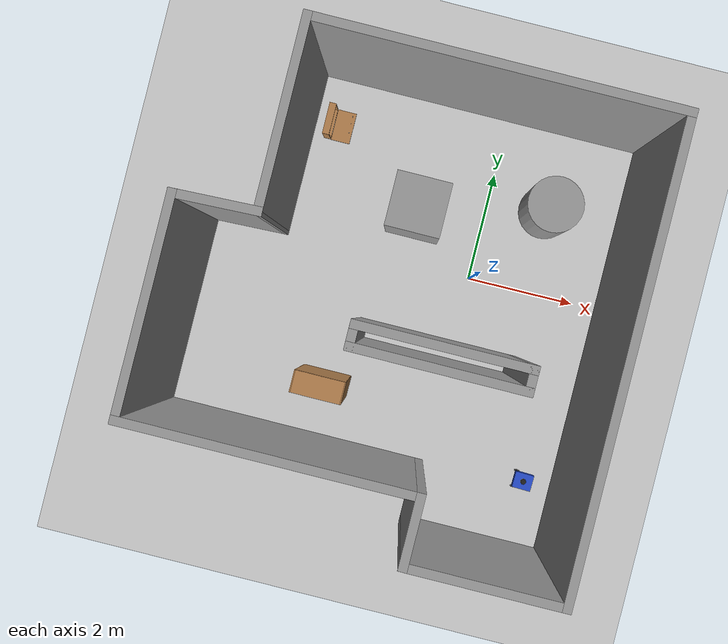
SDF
<sdf version="1.6">
 <world name="default">
  <light name="sun" type="directional">
   <pose>0 0 10 0 -0 0</pose>
   <diffuse>0.8 0.8 0.8 1</diffuse>
   <specular>0.2 0.2 0.2 1</specular>
   <attenuation>
    <range>1000</range>
    <constant>0.9</constant>
    <linear>0.01</linear>
    <quadratic>0.001</quadratic>
   </attenuation>
   <direction>-0.5 0.1 -0.9</direction>
  </light>
  <model name="ground_plane">
   <static>1</static>
   <link name="link">
    <collision name="collision">
     <geometry><plane><normal>0 0 1</normal><size>100 100</size></plane></geometry>
     <surface><friction><ode><mu>100</mu><mu2>50</mu2></ode></friction></surface>
    </collision>
    <visual name="visual">
     <cast_shadows>0</cast_shadows>
     <geometry><plane><normal>0 0 1</normal><size>100 100</size></plane></geometry>
     <material>
      <script><uri>file://media/materials/scripts/gazebo.material</uri><name>Gazebo/Grey</name></script>
     </material>
    </visual>
   </link>
  </model>
  <gravity>0 0 -9.8</gravity>
  <magnetic_field>6e-06 2.3e-05 -4.2e-05</magnetic_field>
  <atmosphere type="adiabatic"/>
  <physics name="default_physics" default="0" type="ode">
   <max_step_size>0.001</max_step_size>
   <real_time_factor>1</real_time_factor>
   <real_time_update_rate>1000</real_time_update_rate>
  </physics>
  <scene><ambient>0.4 0.4 0.4 1</ambient><background>0.7 0.7 0.7 1</background><shadows>1</shadows></scene>
  <spherical_coordinates>
   <surface_model>EARTH_WGS84</surface_model>
   <latitude_deg>0</latitude_deg>
   <longitude_deg>0</longitude_deg>
   <elevation>0</elevation>
   <heading_deg>0</heading_deg>
  </spherical_coordinates>
  <model name="mrobot">
   <link name="base_footprint">
    <inertial>
     <pose>0 0 0.275199 0 -0 0</pose>
     <mass>30.1</mass>
     <inertia><ixx>17.1916</ixx><ixy>0</ixy><ixz>0</ixz><iyy>17.1916</iyy><iyz>0</iyz><izz>33.76</izz></inertia>
    </inertial>
    <collision name="base_footprint_fixed_joint_lump__base_link_collision">
     <pose>0 0 0.275 0 -0 0</pose>
     <geometry><box><size>0.35 0.3 0.1</size></box></geometry>
    </collision>
    <collision name="base_footprint_fixed_joint_lump__laser_link_collision_1">
     <pose>0 0 0.335 0 -0 0</pose>
     <geometry><cylinder><length>0.06</length><radius>0.05</radius></cylinder></geometry>
    </collision>
    <visual name="base_footprint_visual">
     <geometry><box><size>0.001 0.001 0.001</size></box></geometry>
     <material><script><uri>__default__</uri><name>__default__</name></script></material>
    </visual>
    <visual name="base_footprint_fixed_joint_lump__base_link_visual_1">
     <pose>0 0 0.275 0 -0 0</pose>
     <geometry><box><size>0.35 0.3 0.1</size></box></geometry>
     <material>
      <script><name>Gazebo/Blue</name><uri>file://media/materials/scripts/gazebo.material</uri></script>
     </material>
    </visual>
    <visual name="base_footprint_fixed_joint_lump__laser_link_visual_2">
     <pose>0 0 0.335 0 -0 0</pose>
     <geometry><cylinder><length>0.05</length><radius>0.05</radius></cylinder></geometry>
     <material>
      <script><name>Gazebo/Black</name><uri>file://media/materials/scripts/gazebo.material</uri></script>
     </material>
    </visual>
    <sensor name="rplidar" type="ray">
     <visualize>0</visualize>
     <update_rate>5.5</update_rate>
     <ray>
      <scan>
       <horizontal>
        <samples>360</samples>
        <resolution>1</resolution>
        <min_angle>-3</min_angle>
        <max_angle>3</max_angle>
       </horizontal>
       <vertical><samples>1</samples><min_angle>0</min_angle><max_angle>0</max_angle></vertical>
      </scan>
      <range><min>0.1</min><max>6</max><resolution>0.01</resolution></range>
      <noise><type>gaussian</type><mean>0</mean><stddev>0.01</stddev></noise>
     </ray>
     <plugin name="gazebo_rplidar" filename="libgazebo_ros_laser.so">
      <topicName>/scan</topicName>
      <frameName>laser_link</frameName>
      <robotNamespace>/</robotNamespace>
     </plugin>
     <pose>0 0 0.335 0 -0 0</pose>
    </sensor>
   </link>
   <link name="front_caster_link">
    <pose>0.13 0 0.225 0 -0 0</pose>
    <inertial>
     <mass>0.2</mass>
     <inertia><ixx>0.0002</ixx><ixy>0</ixy><ixz>0</ixz><iyy>0.0002</iyy><iyz>0</iyz><izz>0.0002</izz></inertia>
    </inertial>
    <collision name="front_caster_link_collision">
     <geometry><sphere><radius>0.05</radius></sphere></geometry>
    </collision>
    <visual name="front_caster_link_visual">
     <geometry><sphere><radius>0.05</radius></sphere></geometry>
     <material>
      <script><name>Gazebo/Black</name><uri>file://media/materials/scripts/gazebo.material</uri></script>
     </material>
    </visual>
   </link>
   <joint name="front_caster_joint" type="revolute">
    <child>front_caster_link</child>
    <parent>base_footprint</parent>
    <axis>
     <xyz>0 1 0</xyz>
     <limit><lower>-1e+16</lower><upper>1e+16</upper></limit>
     <dynamics><spring_reference>0</spring_reference><spring_stiffness>0</spring_stiffness></dynamics>
     <use_parent_model_frame>1</use_parent_model_frame>
    </axis>
   </joint>
   <link name="left_wheel_link">
    <pose>-0.15 -0.15 0.225 0 -0 0</pose>
    <inertial>
     <mass>5</mass>
     <inertia>
      <ixx>0.00338542</ixx>
      <ixy>0</ixy>
      <ixz>0</ixz>
      <iyy>0.00338542</iyy>
      <iyz>0</iyz>
      <izz>0.00625</izz>
     </inertia>
    </inertial>
    <collision name="left_wheel_link_collision">
     <pose>0 0 0 1.5708 -0 0</pose>
     <geometry><cylinder><length>0.025</length><radius>0.05</radius></cylinder></geometry>
    </collision>
    <visual name="left_wheel_link_visual">
     <pose>0 0 0 1.5708 -0 0</pose>
     <geometry><cylinder><length>0.025</length><radius>0.05</radius></cylinder></geometry>
     <material>
      <script><name>Gazebo/Black</name><uri>file://media/materials/scripts/gazebo.material</uri></script>
     </material>
    </visual>
    <visual name="left_wheel_link_fixed_joint_lump__cylinder_link_visual_1">
     <pose>0 0.162 0 1.5708 -0 0</pose>
     <geometry><cylinder><length>0.3</length><radius>0.004</radius></cylinder></geometry>
     <material>
      <script><name>Gazebo/Yellow</name><uri>file://media/materials/scripts/gazebo.material</uri></script>
     </material>
    </visual>
   </link>
   <joint name="left_wheel_joint" type="revolute">
    <child>left_wheel_link</child>
    <parent>base_footprint</parent>
    <axis>
     <xyz>0 1 0</xyz>
     <limit><lower>-1e+16</lower><upper>1e+16</upper></limit>
     <dynamics><spring_reference>0</spring_reference><spring_stiffness>0</spring_stiffness></dynamics>
     <use_parent_model_frame>1</use_parent_model_frame>
    </axis>
   </joint>
   <link name="right_wheel_link">
    <pose>-0.15 0.15 0.225 0 -0 0</pose>
    <inertial>
     <mass>5</mass>
     <inertia>
      <ixx>0.00338542</ixx>
      <ixy>0</ixy>
      <ixz>0</ixz>
      <iyy>0.00338542</iyy>
      <iyz>0</iyz>
      <izz>0.00625</izz>
     </inertia>
    </inertial>
    <collision name="right_wheel_link_collision">
     <pose>0 0 0 1.5708 -0 0</pose>
     <geometry><cylinder><length>0.025</length><radius>0.05</radius></cylinder></geometry>
    </collision>
    <visual name="right_wheel_link_visual">
     <pose>0 0 0 1.5708 -0 0</pose>
     <geometry><cylinder><length>0.025</length><radius>0.05</radius></cylinder></geometry>
     <material>
      <script><name>Gazebo/Black</name><uri>file://media/materials/scripts/gazebo.material</uri></script>
     </material>
    </visual>
   </link>
   <joint name="right_wheel_joint" type="revolute">
    <child>right_wheel_link</child>
    <parent>base_footprint</parent>
    <axis>
     <xyz>0 1 0</xyz>
     <limit><lower>-1e+16</lower><upper>1e+16</upper></limit>
     <dynamics><spring_reference>0</spring_reference><spring_stiffness>0</spring_stiffness></dynamics>
     <use_parent_model_frame>1</use_parent_model_frame>
    </axis>
   </joint>
   <static>0</static>
   <plugin name="differential_drive_controller" filename="libgazebo_ros_diff_drive.so">
    <rosDebugLevel>Debug</rosDebugLevel>
    <publishWheelTF>true</publishWheelTF>
    <robotNamespace>/</robotNamespace>
    <publishTf>1</publishTf>
    <publishWheelJointState>true</publishWheelJointState>
    <alwaysOn>true</alwaysOn>
    <updateRate>100.0</updateRate>
    <legacyMode>true</legacyMode>
    <leftJoint>left_wheel_joint</leftJoint>
    <rightJoint>right_wheel_joint</rightJoint>
    <wheelSeparation>0.3</wheelSeparation>
    <wheelDiameter>0.1</wheelDiameter>
    <broadcastTF>1</broadcastTF>
    <wheelTorque>30</wheelTorque>
    <wheelAcceleration>1.8</wheelAcceleration>
    <commandTopic>cmd_vel</commandTopic>
    <odometryFrame>odom</odometryFrame>
    <odometryTopic>odom</odometryTopic>
    <robotBaseFrame>base_footprint</robotBaseFrame>
   </plugin>
   <pose>1.90566 -3.45031 -0.17503 0 0.000211 -0.03056</pose>
  </model>
  <model name="bookshelf">
   <static>1</static>
   <link name="link">
    <inertial><mass>1</mass></inertial>
    <collision name="back">
     <pose>0 0.005 0.6 0 -0 0</pose>
     <geometry><box><size>0.9 0.01 1.2</size></box></geometry>
    </collision>
    <visual name="visual1">
     <pose>0 0.005 0.6 0 -0 0</pose>
     <geometry><box><size>0.9 0.01 1.2</size></box></geometry>
     <material>
      <script><uri>file://media/materials/scripts/gazebo.material</uri><name>Gazebo/Wood</name></script>
     </material>
    </visual>
    <collision name="left_side">
     <pose>0.45 -0.195 0.6 0 -0 0</pose>
     <geometry><box><size>0.02 0.4 1.2</size></box></geometry>
    </collision>
    <visual name="visual2">
     <pose>0.45 -0.195 0.6 0 -0 0</pose>
     <geometry><box><size>0.02 0.4 1.2</size></box></geometry>
     <material>
      <script><uri>file://media/materials/scripts/gazebo.material</uri><name>Gazebo/Wood</name></script>
     </material>
    </visual>
    <collision name="right_side">
     <pose>-0.45 -0.195 0.6 0 -0 0</pose>
     <geometry><box><size>0.02 0.4 1.2</size></box></geometry>
    </collision>
    <visual name="visual3">
     <pose>-0.45 -0.195 0.6 0 -0 0</pose>
     <geometry><box><size>0.02 0.4 1.2</size></box></geometry>
     <material>
      <script><uri>file://media/materials/scripts/gazebo.material</uri><name>Gazebo/Wood</name></script>
     </material>
    </visual>
    <collision name="bottom">
     <pose>0 -0.195 0.03 0 -0 0</pose>
     <geometry><box><size>0.88 0.4 0.06</size></box></geometry>
    </collision>
    <visual name="visual4">
     <pose>0 -0.195 0.03 0 -0 0</pose>
     <geometry><box><size>0.88 0.4 0.06</size></box></geometry>
     <material>
      <script><uri>file://media/materials/scripts/gazebo.material</uri><name>Gazebo/Wood</name></script>
     </material>
    </visual>
    <collision name="top">
     <pose>0 -0.195 1.19 0 -0 0</pose>
     <geometry><box><size>0.88 0.4 0.02</size></box></geometry>
    </collision>
    <visual name="visual5">
     <pose>0 -0.195 1.19 0 -0 0</pose>
     <geometry><box><size>0.88 0.4 0.02</size></box></geometry>
     <material>
      <script><uri>file://media/materials/scripts/gazebo.material</uri><name>Gazebo/Wood</name></script>
     </material>
    </visual>
    <collision name="low_shelf">
     <pose>0 -0.195 0.43 0 -0 0</pose>
     <geometry><box><size>0.88 0.4 0.02</size></box></geometry>
    </collision>
    <visual name="visual6">
     <pose>0 -0.195 0.43 0 -0 0</pose>
     <geometry><box><size>0.88 0.4 0.02</size></box></geometry>
     <material>
      <script><uri>file://media/materials/scripts/gazebo.material</uri><name>Gazebo/Wood</name></script>
     </material>
    </visual>
    <collision name="high_shelf">
     <pose>0 -0.195 0.8 0 -0 0</pose>
     <geometry><box><size>0.88 0.4 0.02</size></box></geometry>
    </collision>
    <visual name="visual7">
     <pose>0 -0.195 0.8 0 -0 0</pose>
     <geometry><box><size>0.88 0.4 0.02</size></box></geometry>
     <material>
      <script><uri>file://media/materials/scripts/gazebo.material</uri><name>Gazebo/Wood</name></script>
     </material>
    </visual>
   </link>
   <pose>-2.15811 -2.34439 0 0 -0 0</pose>
  </model>
  <model name="wooden_case_metal_peg">
   <link name="wooden_case::base">
    <pose>0 0 0.024 0 -0 0</pose>
    <inertial>
     <pose>-0.022184 0 0.171592 0 -0 0</pose>
     <mass>3.96264</mass>
     <inertia>
      <ixx>0.213536</ixx>
      <ixy>0</ixy>
      <ixz>0.000779377</ixz>
      <iyy>0.0708943</iyy>
      <iyz>0</iyz>
      <izz>0.154604</izz>
     </inertia>
    </inertial>
    <collision name="collision_back">
     <pose>-0.053975 0 0.1778 0 -0 0</pose>
     <geometry><box><size>0.01905 0.5461 0.3175</size></box></geometry>
     <surface>
      <contact>
       <poissons_ratio>0.347</poissons_ratio>
       <elastic_modulus>8.8e+09</elastic_modulus>
       <ode><kp>100000</kp><kd>100</kd><max_vel>100</max_vel><min_depth>0.001</min_depth></ode>
      </contact>
      <friction>
       <torsional>
        <coefficient>1</coefficient>
        <use_patch_radius>0</use_patch_radius>
        <surface_radius>0.01</surface_radius>
       </torsional>
      </friction>
     </surface>
    </collision>
    <visual name="visual_back">
     <pose>-0.053975 0 0.1778 0 -0 0</pose>
     <geometry><box><size>0.01905 0.5461 0.3175</size></box></geometry>
     <material>
      <script><uri>file://media/materials/scripts/gazebo.material</uri><name>Gazebo/Wood</name></script>
     </material>
    </visual>
    <collision name="collision_bottom">
     <pose>0 0 0.009525 0 -0 0</pose>
     <geometry><box><size>0.127 0.5842 0.01905</size></box></geometry>
     <surface>
      <contact>
       <poissons_ratio>0.347</poissons_ratio>
       <elastic_modulus>8.8e+09</elastic_modulus>
       <ode><kp>100000</kp><kd>100</kd><max_vel>100</max_vel><min_depth>0.001</min_depth></ode>
      </contact>
      <friction>
       <torsional>
        <coefficient>1</coefficient>
        <use_patch_radius>0</use_patch_radius>
        <surface_radius>0.01</surface_radius>
       </torsional>
      </friction>
     </surface>
    </collision>
    <visual name="visual_bottom">
     <pose>0 0 0.009525 0 -0 0</pose>
     <geometry><box><size>0.127 0.5842 0.01905</size></box></geometry>
     <material>
      <script><uri>file://media/materials/scripts/gazebo.material</uri><name>Gazebo/Wood</name></script>
     </material>
    </visual>
    <collision name="collision_top">
     <pose>0 0 0.346075 0 -0 0</pose>
     <geometry><box><size>0.127 0.5842 0.01905</size></box></geometry>
     <surface>
      <contact>
       <poissons_ratio>0.347</poissons_ratio>
       <elastic_modulus>8.8e+09</elastic_modulus>
       <ode><kp>100000</kp><kd>100</kd><max_vel>100</max_vel><min_depth>0.001</min_depth></ode>
      </contact>
      <friction>
       <torsional>
        <coefficient>1</coefficient>
        <use_patch_radius>0</use_patch_radius>
        <surface_radius>0.01</surface_radius>
       </torsional>
      </friction>
     </surface>
    </collision>
    <visual name="visual_top">
     <pose>0 0 0.346075 0 -0 0</pose>
     <geometry><box><size>0.127 0.5842 0.01905</size></box></geometry>
     <material>
      <script><uri>file://media/materials/scripts/gazebo.material</uri><name>Gazebo/Wood</name></script>
     </material>
    </visual>
    <collision name="collision_left">
     <pose>0 -0.282575 0.1778 0 -0 0</pose>
     <geometry><box><size>0.127 0.01905 0.3175</size></box></geometry>
     <surface>
      <contact>
       <poissons_ratio>0.347</poissons_ratio>
       <elastic_modulus>8.8e+09</elastic_modulus>
       <ode><kp>100000</kp><kd>100</kd><max_vel>100</max_vel><min_depth>0.001</min_depth></ode>
      </contact>
      <friction>
       <torsional>
        <coefficient>1</coefficient>
        <use_patch_radius>0</use_patch_radius>
        <surface_radius>0.01</surface_radius>
       </torsional>
      </friction>
     </surface>
    </collision>
    <visual name="visual_left">
     <pose>0 -0.282575 0.1778 0 -0 0</pose>
     <geometry><box><size>0.127 0.01905 0.3175</size></box></geometry>
     <material>
      <script><uri>file://media/materials/scripts/gazebo.material</uri><name>Gazebo/Wood</name></script>
     </material>
    </visual>
    <collision name="collision_right">
     <pose>0 0.282575 0.1778 0 -0 0</pose>
     <geometry><box><size>0.127 0.01905 0.3175</size></box></geometry>
     <surface>
      <contact>
       <poissons_ratio>0.347</poissons_ratio>
       <elastic_modulus>8.8e+09</elastic_modulus>
       <ode><kp>100000</kp><kd>100</kd><max_vel>100</max_vel><min_depth>0.001</min_depth></ode>
      </contact>
      <friction>
       <torsional>
        <coefficient>1</coefficient>
        <use_patch_radius>0</use_patch_radius>
        <surface_radius>0.01</surface_radius>
       </torsional>
      </friction>
     </surface>
    </collision>
    <visual name="visual_right">
     <pose>0 0.282575 0.1778 0 -0 0</pose>
     <geometry><box><size>0.127 0.01905 0.3175</size></box></geometry>
     <material>
      <script><uri>file://media/materials/scripts/gazebo.material</uri><name>Gazebo/Wood</name></script>
     </material>
    </visual>
    <collision name="collision_block_left">
     <pose>0.0095 -0.2151 -0.012 0 -0 0</pose>
     <geometry><box><size>0.108 0.05 0.024</size></box></geometry>
     <surface>
      <contact>
       <poissons_ratio>0.347</poissons_ratio>
       <elastic_modulus>8.8e+09</elastic_modulus>
       <ode><kp>100000</kp><kd>100</kd><max_vel>100</max_vel><min_depth>0.001</min_depth></ode>
      </contact>
      <friction>
       <torsional>
        <coefficient>1</coefficient>
        <use_patch_radius>0</use_patch_radius>
        <surface_radius>0.01</surface_radius>
       </torsional>
      </friction>
     </surface>
    </collision>
    <visual name="visual_block_left">
     <pose>0.0095 -0.2151 -0.012 0 -0 0</pose>
     <geometry><box><size>0.108 0.05 0.024</size></box></geometry>
     <material>
      <script><uri>file://media/materials/scripts/gazebo.material</uri><name>Gazebo/Wood</name></script>
     </material>
    </visual>
    <collision name="collision_block_right">
     <pose>0.0095 0.2151 -0.012 0 -0 0</pose>
     <geometry><box><size>0.108 0.05 0.024</size></box></geometry>
     <surface>
      <contact>
       <poissons_ratio>0.347</poissons_ratio>
       <elastic_modulus>8.8e+09</elastic_modulus>
       <ode><kp>100000</kp><kd>100</kd><max_vel>100</max_vel><min_depth>0.001</min_depth></ode>
      </contact>
      <friction>
       <torsional>
        <coefficient>1</coefficient>
        <use_patch_radius>0</use_patch_radius>
        <surface_radius>0.01</surface_radius>
       </torsional>
      </friction>
     </surface>
    </collision>
    <visual name="visual_block_right">
     <pose>0.0095 0.2151 -0.012 0 -0 0</pose>
     <geometry><box><size>0.108 0.05 0.024</size></box></geometry>
     <material>
      <script><uri>file://media/materials/scripts/gazebo.material</uri><name>Gazebo/Wood</name></script>
     </material>
    </visual>
   </link>
   <link name="wooden_case::lid">
    <pose>0.243775 0 0.009525 0 -0 0</pose>
    <inertial>
     <mass>1.97874</mass>
     <inertia>
      <ixx>0.0563367</ixx>
      <ixy>0</ixy>
      <ixz>0</ixz>
      <iyy>0.020911</iyy>
      <iyz>0</iyz>
      <izz>0.0771281</izz>
     </inertia>
    </inertial>
    <collision name="collision">
     <geometry><box><size>0.3556 0.5842 0.01905</size></box></geometry>
     <surface>
      <contact>
       <poissons_ratio>0.347</poissons_ratio>
       <elastic_modulus>8.8e+09</elastic_modulus>
       <ode><kp>100000</kp><kd>100</kd><max_vel>100</max_vel><min_depth>0.001</min_depth></ode>
      </contact>
      <friction>
       <torsional>
        <coefficient>1</coefficient>
        <use_patch_radius>0</use_patch_radius>
        <surface_radius>0.01</surface_radius>
       </torsional>
      </friction>
     </surface>
    </collision>
    <visual name="visual">
     <geometry><box><size>0.3556 0.5842 0.01905</size></box></geometry>
     <material>
      <script><uri>file://media/materials/scripts/gazebo.material</uri><name>Gazebo/Wood</name></script>
     </material>
    </visual>
    <visual name="tee_nut_1">
     <pose>0.122 -0.216 0 0 -0 0</pose>
     <geometry><cylinder><radius>0.00635</radius><length>0.0192405</length></cylinder></geometry>
     <material>
      <script><uri>file://media/materials/scripts/gazebo.material</uri><name>Gazebo/Grey</name></script>
     </material>
    </visual>
    <visual name="tee_nut_2">
     <pose>0.122 -0.088 0 0 -0 0</pose>
     <geometry><cylinder><radius>0.00635</radius><length>0.0192405</length></cylinder></geometry>
     <material>
      <script><uri>file://media/materials/scripts/gazebo.material</uri><name>Gazebo/Grey</name></script>
     </material>
    </visual>
    <visual name="tee_nut_3">
     <pose>0.122 0.088 0 0 -0 0</pose>
     <geometry><cylinder><radius>0.00635</radius><length>0.0192405</length></cylinder></geometry>
     <material>
      <script><uri>file://media/materials/scripts/gazebo.material</uri><name>Gazebo/Grey</name></script>
     </material>
    </visual>
    <visual name="tee_nut_4">
     <pose>0.122 0.216 0 0 -0 0</pose>
     <geometry><cylinder><radius>0.00635</radius><length>0.0192405</length></cylinder></geometry>
     <material>
      <script><uri>file://media/materials/scripts/gazebo.material</uri><name>Gazebo/Grey</name></script>
     </material>
    </visual>
   </link>
   <joint name="wooden_case::lid_hinge" type="revolute">
    <pose>-0.1778 0 0.01905 0 -0 0</pose>
    <parent>wooden_case::base</parent>
    <child>wooden_case::lid</child>
    <axis>
     <xyz>0 1 0</xyz>
     <limit><upper>0.523599</upper><lower>-1.5708</lower></limit>
     <use_parent_model_frame>0</use_parent_model_frame>
     <dynamics><spring_reference>0</spring_reference><spring_stiffness>0</spring_stiffness></dynamics>
    </axis>
   </joint>
   <link name="peg::link">
    <pose>0.365774 0.216 0.05005 0 -0 0</pose>
    <inertial>
     <mass>0.0121</mass>
     <inertia>
      <ixx>3.90898e-06</ixx>
      <ixy>0</ixy>
      <ixz>0</ixz>
      <iyy>3.90898e-06</iyy>
      <iyz>0</iyz>
      <izz>6.58845e-08</izz>
     </inertia>
    </inertial>
    <collision name="collision">
     <geometry><cylinder><radius>0.0033</radius><length>0.062</length></cylinder></geometry>
     <surface>
      <contact>
       <poissons_ratio>0.305</poissons_ratio>
       <elastic_modulus>2e+11</elastic_modulus>
       <ode><kp>100000</kp><kd>100</kd><max_vel>100</max_vel><min_depth>0.001</min_depth></ode>
      </contact>
      <friction>
       <torsional>
        <coefficient>1</coefficient>
        <use_patch_radius>0</use_patch_radius>
        <surface_radius>0.01</surface_radius>
       </torsional>
      </friction>
     </surface>
    </collision>
    <visual name="visual">
     <geometry><cylinder><radius>0.0033</radius><length>0.062</length></cylinder></geometry>
     <material>
      <script><uri>file://media/materials/scripts/gazebo.material</uri><name>Gazebo/Grey</name></script>
     </material>
    </visual>
   </link>
   <joint name="case_peg" type="revolute">
    <child>peg::link</child>
    <parent>wooden_case::lid</parent>
    <axis>
     <xyz>0 0 1</xyz>
     <limit><upper>0</upper><lower>0</lower></limit>
     <use_parent_model_frame>0</use_parent_model_frame>
     <dynamics><spring_reference>0</spring_reference><spring_stiffness>0</spring_stiffness></dynamics>
    </axis>
   </joint>
   <pose>-3.23388 2.19745 -0.001057 0 -0.000427 1e-06</pose>
  </model>
  <model name="lj">
   <pose>-1.2134 -0.793111 0 0 -0 0</pose>
   <link name="Wall_0">
    <collision name="Wall_0_Collision">
     <geometry><box><size>3 0.15 2.5</size></box></geometry>
     <pose>0 0 1.25 0 -0 0</pose>
    </collision>
    <visual name="Wall_0_Visual">
     <pose>0 0 1.25 0 -0 0</pose>
     <geometry><box><size>3 0.15 2.5</size></box></geometry>
     <material>
      <script><uri>file://media/materials/scripts/gazebo.material</uri><name>Gazebo/Grey</name></script>
      <ambient>1 1 1 1</ambient>
     </material>
     <meta><layer>0</layer></meta>
    </visual>
    <pose>0.918401 -0.846889 0 0 -0 0</pose>
   </link>
   <link name="Wall_1">
    <collision name="Wall_1_Collision">
     <geometry><box><size>0.5 0.15 2.5</size></box></geometry>
     <pose>0 0 1.25 0 -0 0</pose>
    </collision>
    <visual name="Wall_1_Visual">
     <pose>0 0 1.25 0 -0 0</pose>
     <geometry><box><size>0.5 0.15 2.5</size></box></geometry>
     <material>
      <script><uri>file://media/materials/scripts/gazebo.material</uri><name>Gazebo/Grey</name></script>
      <ambient>1 1 1 1</ambient>
     </material>
     <meta><layer>0</layer></meta>
    </visual>
    <pose>2.3434 -0.671889 0 0 -0 1.5708</pose>
   </link>
   <link name="Wall_10">
    <collision name="Wall_10_Collision">
     <geometry><box><size>1.25 0.15 2.5</size></box></geometry>
     <pose>0 0 1.25 0 -0 0</pose>
    </collision>
    <visual name="Wall_10_Visual">
     <pose>0 0 1.25 0 -0 0</pose>
     <geometry><box><size>1.25 0.15 2.5</size></box></geometry>
     <material>
      <script><uri>file://media/materials/scripts/gazebo.material</uri><name>Gazebo/Grey</name></script>
      <ambient>1 1 1 1</ambient>
     </material>
     <meta><layer>0</layer></meta>
    </visual>
    <pose>1.12636 -3.375 0 0 -0 1.5708</pose>
   </link>
   <link name="Wall_11">
    <collision name="Wall_11_Collision">
     <geometry><box><size>5 0.15 2.5</size></box></geometry>
     <pose>0 0 1.25 0 -0 0</pose>
    </collision>
    <visual name="Wall_11_Visual">
     <pose>0 0 1.25 0 -0 0</pose>
     <geometry><box><size>5 0.15 2.5</size></box></geometry>
     <material>
      <script><uri>file://media/materials/scripts/gazebo.material</uri><name>Gazebo/Grey</name></script>
      <ambient>1 1 1 1</ambient>
     </material>
     <meta><layer>0</layer></meta>
    </visual>
    <pose>-1.29864 -2.825 0 0 -0 3.14159</pose>
   </link>
   <link name="Wall_12">
    <collision name="Wall_12_Collision">
     <geometry><box><size>3.75 0.15 2.5</size></box></geometry>
     <pose>0 0 1.25 0 -0 0</pose>
    </collision>
    <visual name="Wall_12_Visual">
     <pose>0 0 1.25 0 -0 0</pose>
     <geometry><box><size>3.75 0.15 2.5</size></box></geometry>
     <material>
      <script><uri>file://media/materials/scripts/gazebo.material</uri><name>Gazebo/Grey</name></script>
      <ambient>1 1 1 1</ambient>
     </material>
     <meta><layer>0</layer></meta>
    </visual>
    <pose>-3.72364 -1.025 0 0 -0 1.5708</pose>
   </link>
   <link name="Wall_13">
    <collision name="Wall_13_Collision">
     <geometry><box><size>1.50093 0.15 2.5</size></box></geometry>
     <pose>0 0 1.25 0 -0 0</pose>
    </collision>
    <visual name="Wall_13_Visual">
     <pose>0 0 1.25 0 -0 0</pose>
     <geometry><box><size>1.50093 0.15 2.5</size></box></geometry>
     <material>
      <script><uri>file://media/materials/scripts/gazebo.material</uri><name>Gazebo/Grey</name></script>
      <ambient>1 1 1 1</ambient>
     </material>
     <meta><layer>0</layer></meta>
    </visual>
    <pose>-3.04864 0.8 0 0 -0 0.03702</pose>
   </link>
   <link name="Wall_2">
    <collision name="Wall_2_Collision">
     <geometry><box><size>3 0.15 2.5</size></box></geometry>
     <pose>0 0 1.25 0 -0 0</pose>
    </collision>
    <visual name="Wall_2_Visual">
     <pose>0 0 1.25 0 -0 0</pose>
     <geometry><box><size>3 0.15 2.5</size></box></geometry>
     <material>
      <script><uri>file://media/materials/scripts/gazebo.material</uri><name>Gazebo/Grey</name></script>
      <ambient>1 1 1 1</ambient>
     </material>
     <meta><layer>0</layer></meta>
    </visual>
    <pose>0.918401 -0.496889 0 0 -0 3.14159</pose>
   </link>
   <link name="Wall_3">
    <collision name="Wall_3_Collision">
     <geometry><box><size>0.5 0.15 2.5</size></box></geometry>
     <pose>0 0 1.25 0 -0 0</pose>
    </collision>
    <visual name="Wall_3_Visual">
     <pose>0 0 1.25 0 -0 0</pose>
     <geometry><box><size>0.5 0.15 2.5</size></box></geometry>
     <material>
      <script><uri>file://media/materials/scripts/gazebo.material</uri><name>Gazebo/Grey</name></script>
      <ambient>1 1 1 1</ambient>
     </material>
     <meta><layer>0</layer></meta>
    </visual>
    <pose>-0.506599 -0.671889 0 0 0 -1.5708</pose>
   </link>
   <link name="Wall_6">
    <collision name="Wall_6_Collision">
     <geometry><box><size>3.25 0.15 2.5</size></box></geometry>
     <pose>0 0 1.25 0 -0 0</pose>
    </collision>
    <visual name="Wall_6_Visual">
     <pose>0 0 1.25 0 -0 0</pose>
     <geometry><box><size>3.25 0.15 2.5</size></box></geometry>
     <material>
      <script><uri>file://media/materials/scripts/gazebo.material</uri><name>Gazebo/Grey</name></script>
      <ambient>1 1 1 1</ambient>
     </material>
     <meta><layer>0</layer></meta>
    </visual>
    <pose>-2.37364 2.375 0 0 -0 1.5708</pose>
   </link>
   <link name="Wall_7">
    <collision name="Wall_7_Collision">
     <geometry><box><size>6.25 0.15 2.5</size></box></geometry>
     <pose>0 0 1.25 0 -0 0</pose>
    </collision>
    <visual name="Wall_7_Visual">
     <pose>0 0 1.25 0 -0 0</pose>
     <geometry><box><size>6.25 0.15 2.5</size></box></geometry>
     <material>
      <script><uri>file://media/materials/scripts/gazebo.material</uri><name>Gazebo/Grey</name></script>
      <ambient>1 1 1 1</ambient>
     </material>
     <meta><layer>0</layer></meta>
    </visual>
    <pose>0.676362 3.925 0 0 -0 0</pose>
   </link>
   <link name="Wall_8">
    <collision name="Wall_8_Collision">
     <geometry><box><size>8 0.15 2.5</size></box></geometry>
     <pose>0 0 1.25 0 -0 0</pose>
    </collision>
    <visual name="Wall_8_Visual">
     <pose>0 0 1.25 0 -0 0</pose>
     <geometry><box><size>8 0.15 2.5</size></box></geometry>
     <material>
      <script><uri>file://media/materials/scripts/gazebo.material</uri><name>Gazebo/Grey</name></script>
      <ambient>1 1 1 1</ambient>
     </material>
     <meta><layer>0</layer></meta>
    </visual>
    <pose>3.72636 0 0 0 0 -1.5708</pose>
   </link>
   <link name="Wall_9">
    <collision name="Wall_9_Collision">
     <geometry><box><size>2.75 0.15 2.5</size></box></geometry>
     <pose>0 0 1.25 0 -0 0</pose>
    </collision>
    <visual name="Wall_9_Visual">
     <pose>0 0 1.25 0 -0 0</pose>
     <geometry><box><size>2.75 0.15 2.5</size></box></geometry>
     <material>
      <script><uri>file://media/materials/scripts/gazebo.material</uri><name>Gazebo/Grey</name></script>
      <ambient>1 1 1 1</ambient>
     </material>
     <meta><layer>0</layer></meta>
    </visual>
    <pose>2.42636 -3.925 0 0 -0 3.14159</pose>
   </link>
   <static>1</static>
  </model>
  <model name="unit_box">
   <pose>-1.2464 0.971915 0.5 0 -0 0</pose>
   <link name="link">
    <inertial>
     <mass>1</mass>
     <inertia>
      <ixx>0.166667</ixx>
      <ixy>0</ixy>
      <ixz>0</ixz>
      <iyy>0.166667</iyy>
      <iyz>0</iyz>
      <izz>0.166667</izz>
     </inertia>
    </inertial>
    <collision name="collision"><geometry><box><size>1 1 1</size></box></geometry></collision>
    <visual name="visual">
     <geometry><box><size>1 1 1</size></box></geometry>
     <material>
      <script><name>Gazebo/Grey</name><uri>file://media/materials/scripts/gazebo.material</uri></script>
     </material>
    </visual>
   </link>
  </model>
  <model name="unit_cylinder">
   <pose>1.08712 1.55592 0.499997 3e-06 4e-06 -0</pose>
   <link name="link">
    <inertial>
     <mass>1</mass>
     <inertia><ixx>0.145833</ixx><ixy>0</ixy><ixz>0</ixz><iyy>0.145833</iyy><iyz>0</iyz><izz>0.125</izz></inertia>
    </inertial>
    <collision name="collision">
     <geometry><cylinder><radius>0.5</radius><length>1</length></cylinder></geometry>
    </collision>
    <visual name="visual">
     <geometry><cylinder><radius>0.5</radius><length>1</length></cylinder></geometry>
     <material>
      <script><name>Gazebo/Grey</name><uri>file://media/materials/scripts/gazebo.material</uri></script>
     </material>
    </visual>
   </link>
  </model>
 </world>
</sdf>
